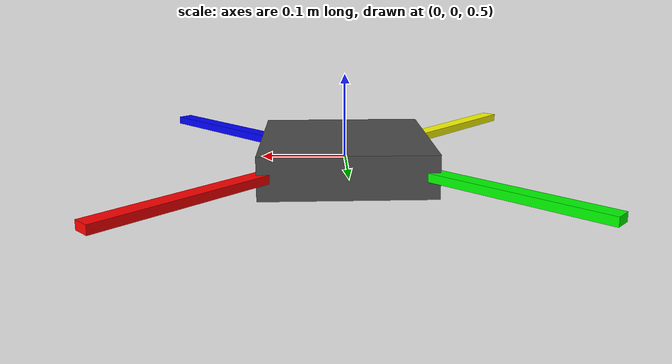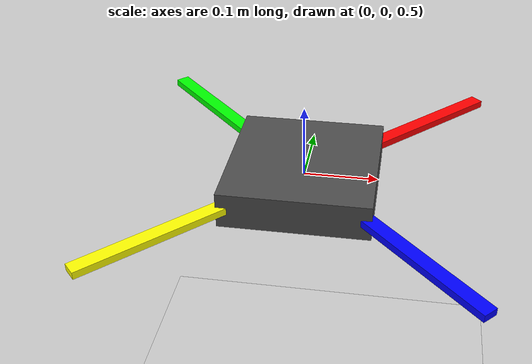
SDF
<?xml version="1.0" ?>
<sdf version="1.6">
  <world name="quadcopter_world">
    <!-- Physics -->
    <physics name="1ms" type="ignored">
      <max_step_size>0.001</max_step_size>
      <real_time_factor>1.0</real_time_factor>
    </physics>

    <!-- Plugins -->
    <plugin
      filename="gz-sim-physics-system"
      name="gz::sim::systems::Physics">
    </plugin>
    <plugin
      filename="gz-sim-sensors-system"
      name="gz::sim::systems::Sensors">
      <render_engine>ogre2</render_engine>
    </plugin>
    <plugin
      filename="gz-sim-scene-broadcaster-system"
      name="gz::sim::systems::SceneBroadcaster">
    </plugin>
    <plugin
      filename="gz-sim-user-commands-system"
      name="gz::sim::systems::UserCommands">
    </plugin>

    <!-- Spherical coordinates for magnetometer -->
    <!-- San Francisco as an example -->
    <spherical_coordinates>
      <surface_model>EARTH_WGS84</surface_model>
      <world_frame_orientation>ENU</world_frame_orientation>
      <latitude_deg>37.7749</latitude_deg>
      <longitude_deg>-122.4194</longitude_deg>
      <elevation>0</elevation>
      <heading_deg>0</heading_deg>
    </spherical_coordinates>

    <!-- Lighting -->
    <light type="directional" name="sun">
      <cast_shadows>true</cast_shadows>
      <pose>0 0 10 0 0 0</pose>
      <diffuse>0.8 0.8 0.8 1</diffuse>
      <specular>0.2 0.2 0.2 1</specular>
      <attenuation>
        <range>1000</range>
        <constant>0.9</constant>
        <linear>0.01</linear>
        <quadratic>0.001</quadratic>
      </attenuation>
      <direction>-0.5 0.1 -0.9</direction>
    </light>

    <include>
      <uri>model://ground_plane</uri>
    </include>
    <include>
      <uri>model://quadcopter</uri>
      <pose>0 0 0.5 0 0 0</pose>
    </include>
  </world>
</sdf>

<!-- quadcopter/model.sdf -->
<sdf version="1.6">
  <model name="quadcopter">
    <link name="base_link">
      <inertial>
        <mass>1.0</mass>
        <inertia>
          <ixx>0.01</ixx>
          <ixy>0.0</ixy>
          <ixz>0.0</ixz>
          <iyy>0.01</iyy>
          <iyz>0.0</iyz>
          <izz>0.01</izz>
        </inertia>
      </inertial>
      <collision name="collision">
        <geometry>
          <box>
            <size>0.2 0.2 0.1</size>
          </box>
        </geometry>
      </collision>
      <visual name="visual">
        <geometry>
          <box>
            <size>0.2 0.2 0.05</size>
          </box>
        </geometry>
        <material>
          <ambient>0.2 0.2 0.2 1</ambient>
          <diffuse>0.3 0.3 0.3 1</diffuse>
          <specular>0.5 0.5 0.5 1</specular>
        </material>
      </visual>
      <!-- Arms -->
      <visual name="arm_front_left">
        <pose>0.15 0.15 0 0 0 0.785398</pose>
        <geometry>
          <box>
            <size>0.25 0.02 0.01</size>
          </box>
        </geometry>
        <material>
          <ambient>1 0 0 1</ambient>
          <diffuse>1 0 0 1</diffuse>
        </material>
      </visual>
      <visual name="arm_front_right">
        <pose>0.15 -0.15 0 0 0 -0.785398</pose>
        <geometry>
          <box>
            <size>0.25 0.02 0.01</size>
          </box>
        </geometry>
        <material>
          <ambient>0 0 1 1</ambient>
          <diffuse>0 0 1 1</diffuse>
        </material>
      </visual>
      <visual name="arm_rear_left">
        <pose>-0.15 0.15 0 0 0 -0.785398</pose>
        <geometry>
          <box>
            <size>0.25 0.02 0.01</size>
          </box>
        </geometry>
        <material>
          <ambient>0 1 0 1</ambient>
          <diffuse>0 1 0 1</diffuse>
        </material>
      </visual>
      <visual name="arm_rear_right">
        <pose>-0.15 -0.15 0 0 0 0.785398</pose>
        <geometry>
          <box>
            <size>0.25 0.02 0.01</size>
          </box>
        </geometry>
        <material>
          <ambient>1 1 0 1</ambient>
          <diffuse>1 1 0 1</diffuse>
        </material>
      </visual>
      <sensor name="imu_sensor" type="imu">
        <always_on>1</always_on>
        <update_rate>100</update_rate>
        <topic>/imu</topic>
        <plugin
          filename="gz-sim-imu-system"
          name="gz::sim::systems::Imu">
        </plugin>
      </sensor>
      <sensor name="magnetometer_sensor" type="magnetometer">
        <always_on>1</always_on>
        <update_rate>100</update_rate>
        <topic>/mag</topic>
        <magnetometer>
          <x>
            <noise type="gaussian">
              <mean>0.0</mean>
              <stddev>0.01</stddev>
            </noise>
          </x>
          <y>
            <noise type="gaussian">
              <mean>0.0</mean>
              <stddev>0.01</stddev>
            </noise>
          </y>
          <z>
            <noise type="gaussian">
              <mean>0.0</mean>
              <stddev>0.01</stddev>
            </noise>
          </z>
        </magnetometer>
        <plugin
          filename="gz-sim-magnetometer-system"
          name="gz::sim::systems::Magnetometer">
        </plugin>
      </sensor>
    </link>
  </model>
</sdf>
